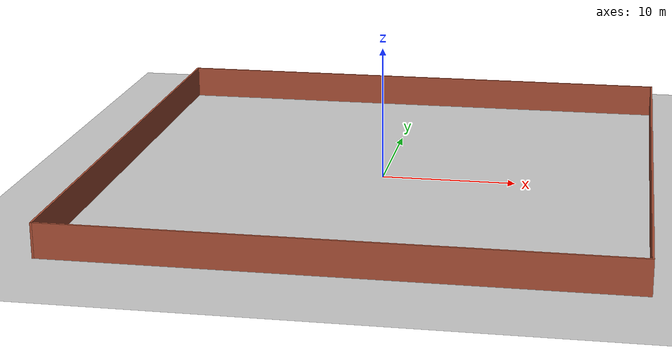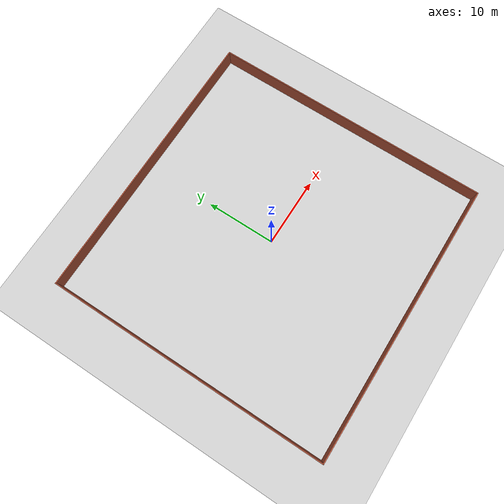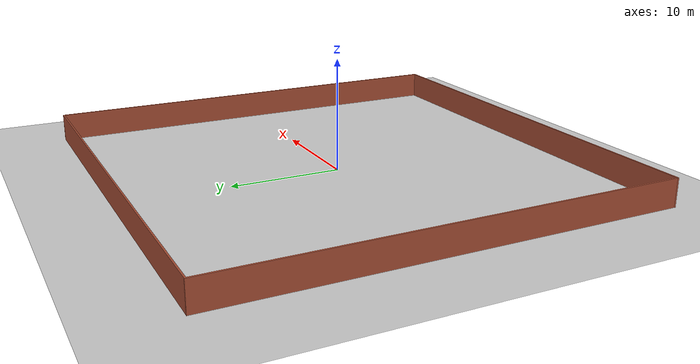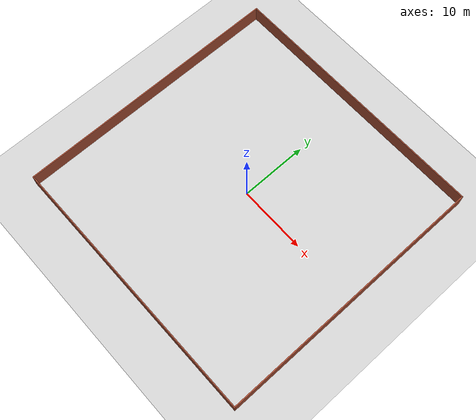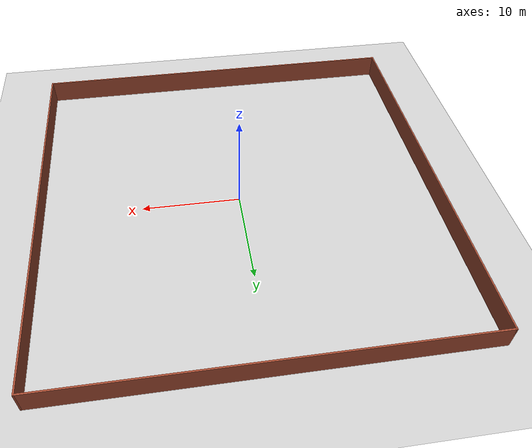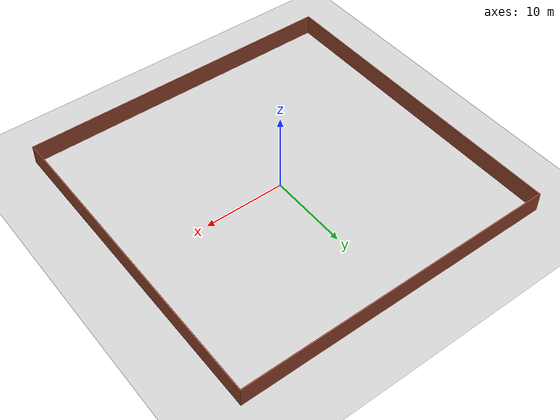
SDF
<sdf version='1.6'>
  <world name='default'>
    <light name='sun' type='directional'>
      <cast_shadows>1</cast_shadows>
      <pose frame=''>0 0 10 0 0 0</pose>
      <diffuse>0.8 0.8 0.8 1</diffuse>
      <specular>0.2 0.2 0.2 1</specular>
      <attenuation>
        <range>1000</range>
        <constant>0.9</constant>
        <linear>0.01</linear>
        <quadratic>0.001</quadratic>
      </attenuation>
      <direction>-0.5 0.1 -0.9</direction>
    </light>

    <model name='ground_plane'>
      <static>1</static>
      <link name='link'>
        <collision name='collision'>
          <geometry>
            <plane>
              <normal>0 0 1</normal>
              <size>100 100</size>
            </plane>
          </geometry>
          <surface>
            <friction>
              <ode>
                <mu>100</mu>
                <mu2>50</mu2>
              </ode>
            </friction>
          </surface>
        </collision>
        <visual name='visual'>
          <cast_shadows>0</cast_shadows>
          <geometry>
            <plane>
              <normal>0 0 1</normal>
              <size>100 100</size>
            </plane>
          </geometry>
          <material>
            <script>
              <uri>file://media/materials/scripts/gazebo.material</uri>
              <name>Gazebo/Grey</name>
            </script>
          </material>
        </visual>
      </link>
    </model>

    <gravity>0 0 -9.8</gravity>
    <magnetic_field>6e-06 2.3e-05 -4.2e-05</magnetic_field>
    <atmosphere type='adiabatic'/>
    <physics name='default_physics' default='0' type='ode'>
      <max_step_size>0.001</max_step_size>
      <real_time_factor>1</real_time_factor>
      <real_time_update_rate>1000</real_time_update_rate>
    </physics>
    <scene>
      <ambient>0.4 0.4 0.4 1</ambient>
      <background>0.7 0.7 0.7 1</background>
      <shadows>1</shadows>
    </scene>
    <wind/>
    <spherical_coordinates>
      <surface_model>EARTH_WGS84</surface_model>
      <latitude_deg>0</latitude_deg>
      <longitude_deg>0</longitude_deg>
      <elevation>0</elevation>
      <heading_deg>0</heading_deg>
    </spherical_coordinates>

    <model name='blank'>
      <static>1</static>
      <link name='Wall_0'>
        <pose frame=''>0 20 0 0 0 0</pose>
        <collision name='Wall_0_Collision'>
          <pose frame=''>0 0 1.25 0 0 0</pose>
          <geometry>
            <box>
              <size>40.15 0.15 2.5</size>
            </box>
          </geometry>
        </collision>
        <visual name='Wall_0_Visual'>
          <pose frame=''>0 0 1.25 0 0 0</pose>
          <geometry>
            <box>
              <size>40.15 0.15 2.5</size>
            </box>
          </geometry>
          <material>
            <script>
              <uri>file://media/materials/scripts/gazebo.material</uri>
              <name>Gazebo/Bricks</name>
            </script>
          </material>
        </visual>
      </link>
      <link name='Wall_1'>
        <pose frame=''>20 0 0 0 0 -1.5708</pose>
        <collision name='Wall_1_Collision'>
          <pose frame=''>0 0 1.25 0 0 0</pose>
          <geometry>
            <box>
              <size>40.15 0.15 2.5</size>
            </box>
          </geometry>
        </collision>
        <visual name='Wall_1_Visual'>
          <pose frame=''>0 0 1.25 0 0 0</pose>
          <geometry>
            <box>
              <size>40.15 0.15 2.5</size>
            </box>
          </geometry>
          <material>
            <script>
              <uri>file://media/materials/scripts/gazebo.material</uri>
              <name>Gazebo/Bricks</name>
            </script>
          </material>
        </visual>
      </link>
      <link name='Wall_2'>
        <pose frame=''>0 -20 0 0 0 3.14159</pose>
        <collision name='Wall_2_Collision'>
          <pose frame=''>0 0 1.25 0 0 0</pose>
          <geometry>
            <box>
              <size>40.15 0.15 2.5</size>
            </box>
          </geometry>
        </collision>
        <visual name='Wall_2_Visual'>
          <pose frame=''>0 0 1.25 0 0 0</pose>
          <geometry>
            <box>
              <size>40.15 0.15 2.5</size>
            </box>
          </geometry>
          <material>
            <script>
              <uri>file://media/materials/scripts/gazebo.material</uri>
              <name>Gazebo/Bricks</name>
            </script>
          </material>
        </visual>
      </link>
      <link name='Wall_3'>
        <pose frame=''>-20 0 0 0 0 1.5708</pose>
        <collision name='Wall_3_Collision'>
          <pose frame=''>0 0 1.25 0 0 0</pose>
          <geometry>
            <box>
              <size>40.15 0.15 2.5</size>
            </box>
          </geometry>
        </collision>
        <visual name='Wall_3_Visual'>
          <pose frame=''>0 0 1.25 0 0 0</pose>
          <geometry>
            <box>
              <size>40.15 0.15 2.5</size>
            </box>
          </geometry>
          <material>
            <script>
              <uri>file://media/materials/scripts/gazebo.material</uri>
              <name>Gazebo/Bricks</name>
            </script>
          </material>
        </visual>
      </link>
    </model>

    <gui fullscreen='0'>
      <camera name='user_camera'>
        <pose frame=''>-18.4249 -0.929908 17.7813 0 0.795639 0.016998</pose>
        <view_controller>orbit</view_controller>
        <projection_type>perspective</projection_type>
      </camera>
    </gui>
  </world>
</sdf>
